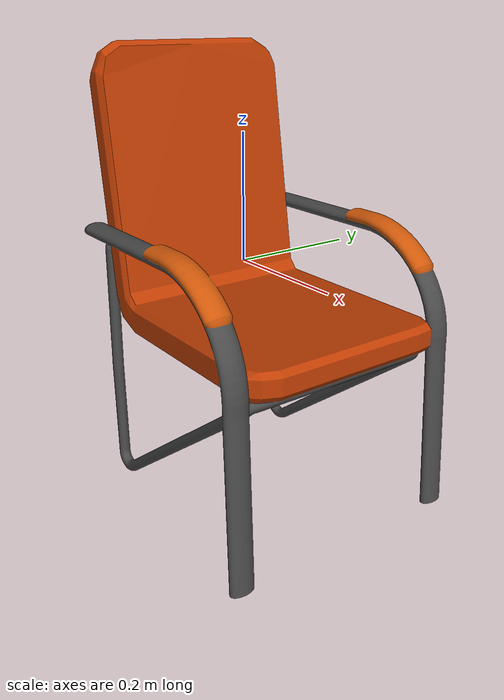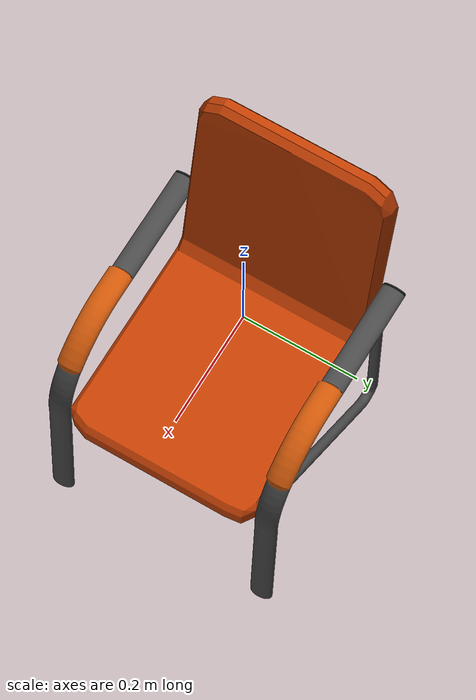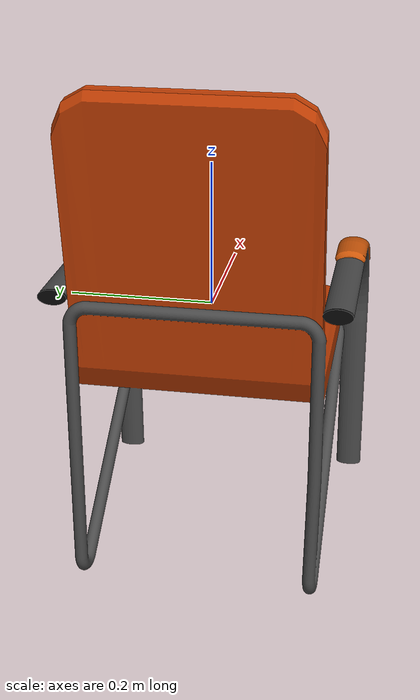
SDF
<?xml version='1.0'?>
<sdf version='1.5'>
  <model name="lectorium_chair_orange">
    <pose>0 0 0 0 0 0</pose>
    <static>false</static>
    <link name='model_body'>
      <visual name="visual">
        <geometry>
          <mesh>
            <uri>model://robert_gazebo/meshes/lectorium_chair_visual_orange.dae</uri>
            <scale>1 1 1</scale>
          </mesh>
         </geometry>
      </visual>

      <collision name="collision">
        <geometry>
          <mesh>
            <uri>model://robert_gazebo/meshes/lectorium_chair_collision.dae</uri>
            <scale>1 1 1</scale>
          </mesh>
        </geometry>
      </collision>

      <inertial>
        <pose> 0 0 0 0 0 0</pose>
        <inertia>
          <ixx>0.53</ixx>
          <ixy>0</ixy>
          <ixz>0</ixz>
          <iyy>0.54</iyy>
          <iyz>0</iyz>
          <izz>0.28</izz>
        </inertia>
        <mass>8.0</mass>
      </inertial>
    </link>
  </model>
</sdf>
